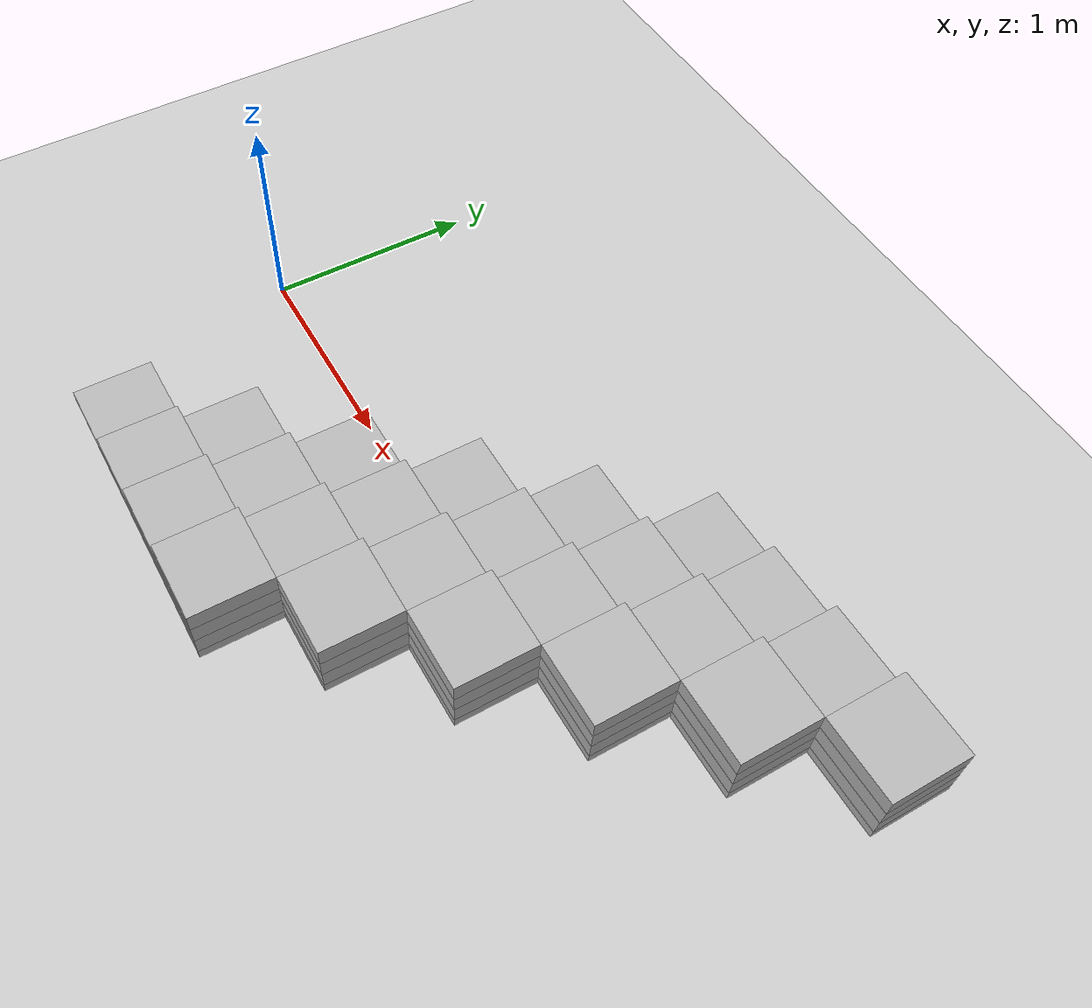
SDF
<sdf version="1.5">
 <world name="trials_task_2">
  <model name="ground_plane">
   <static>1</static>
   <link name="link">
    <collision name="collision">
     <geometry><plane><normal>0 0 1</normal><size>100 100</size></plane></geometry>
     <surface><friction><ode><mu>100</mu><mu2>50</mu2></ode></friction></surface>
    </collision>
    <visual name="visual">
     <cast_shadows>0</cast_shadows>
     <geometry><plane><normal>0 0 1</normal><size>100 100</size></plane></geometry>
     <material>
      <script><uri>file://media/materials/scripts/gazebo.material</uri><name>Gazebo/Grey</name></script>
     </material>
    </visual>
    <velocity_decay><linear>0</linear><angular>0</angular></velocity_decay>
   </link>
  </model>
  <model name="level_block_1">
   <pose>0.351 -0.949 0 0 -0 0</pose>
   <link name="block_0_0_0::link">
    <inertial>
     <pose>0 0 0.0714375 0 -0 0</pose>
     <mass>5</mass>
     <inertia>
      <ixx>0.0681466</ixx>
      <ixy>0</ixy>
      <iyy>0.0681466</iyy>
      <ixz>0</ixz>
      <iyz>0</iyz>
      <izz>0.124808</izz>
     </inertia>
    </inertial>
    <visual name="visual"><geometry><box><size>0.387354 0.387354 0.092075</size></box></geometry></visual>
    <collision name="block_collision">
     <geometry><box><size>0.387354 0.387354 0.092075</size></box></geometry>
     <surface>
      <contact><ode><max_vel>0.1</max_vel><min_depth>0.001</min_depth></ode></contact>
      <friction><ode><mu>1</mu><mu2>1</mu2></ode></friction>
     </surface>
    </collision>
    <velocity_decay><linear>0</linear><angular>0</angular></velocity_decay>
    <pose>0 0 0 0 -0 1.5708</pose>
   </link>
   <link name="block_0_1_1::link">
    <inertial>
     <pose>0 0 0.0714375 0 -0 0</pose>
     <mass>5</mass>
     <inertia>
      <ixx>0.0681466</ixx>
      <ixy>0</ixy>
      <iyy>0.0681466</iyy>
      <ixz>0</ixz>
      <iyz>0</iyz>
      <izz>0.124808</izz>
     </inertia>
    </inertial>
    <visual name="visual"><geometry><box><size>0.387354 0.387354 0.092075</size></box></geometry></visual>
    <collision name="block_collision">
     <geometry><box><size>0.387354 0.387354 0.092075</size></box></geometry>
     <surface>
      <contact><ode><max_vel>0.1</max_vel><min_depth>0.001</min_depth></ode></contact>
      <friction><ode><mu>1</mu><mu2>1</mu2></ode></friction>
     </surface>
    </collision>
    <velocity_decay><linear>0</linear><angular>0</angular></velocity_decay>
    <pose>0.387354 0 0.093 0 -0 1.5708</pose>
   </link>
   <link name="block_0_1_0::link">
    <inertial>
     <pose>0 0 0.0714375 0 -0 0</pose>
     <mass>5</mass>
     <inertia>
      <ixx>0.0681466</ixx>
      <ixy>0</ixy>
      <iyy>0.0681466</iyy>
      <ixz>0</ixz>
      <iyz>0</iyz>
      <izz>0.124808</izz>
     </inertia>
    </inertial>
    <visual name="visual"><geometry><box><size>0.387354 0.387354 0.092075</size></box></geometry></visual>
    <collision name="block_collision">
     <geometry><box><size>0.387354 0.387354 0.092075</size></box></geometry>
     <surface>
      <contact><ode><max_vel>0.1</max_vel><min_depth>0.001</min_depth></ode></contact>
      <friction><ode><mu>1</mu><mu2>1</mu2></ode></friction>
     </surface>
    </collision>
    <velocity_decay><linear>0</linear><angular>0</angular></velocity_decay>
    <pose>0.387354 0 0 0 -0 1.5708</pose>
   </link>
   <link name="block_0_2_2::link">
    <inertial>
     <pose>0 0 0.0714375 0 -0 0</pose>
     <mass>5</mass>
     <inertia>
      <ixx>0.0681466</ixx>
      <ixy>0</ixy>
      <iyy>0.0681466</iyy>
      <ixz>0</ixz>
      <iyz>0</iyz>
      <izz>0.124808</izz>
     </inertia>
    </inertial>
    <visual name="visual"><geometry><box><size>0.387354 0.387354 0.092075</size></box></geometry></visual>
    <collision name="block_collision">
     <geometry><box><size>0.387354 0.387354 0.092075</size></box></geometry>
     <surface>
      <contact><ode><max_vel>0.1</max_vel><min_depth>0.001</min_depth></ode></contact>
      <friction><ode><mu>1</mu><mu2>1</mu2></ode></friction>
     </surface>
    </collision>
    <velocity_decay><linear>0</linear><angular>0</angular></velocity_decay>
    <pose>0.774707 0 0.186 0 -0 1.5708</pose>
   </link>
   <link name="block_0_2_1::link">
    <inertial>
     <pose>0 0 0.0714375 0 -0 0</pose>
     <mass>5</mass>
     <inertia>
      <ixx>0.0681466</ixx>
      <ixy>0</ixy>
      <iyy>0.0681466</iyy>
      <ixz>0</ixz>
      <iyz>0</iyz>
      <izz>0.124808</izz>
     </inertia>
    </inertial>
    <visual name="visual"><geometry><box><size>0.387354 0.387354 0.092075</size></box></geometry></visual>
    <collision name="block_collision">
     <geometry><box><size>0.387354 0.387354 0.092075</size></box></geometry>
     <surface>
      <contact><ode><max_vel>0.1</max_vel><min_depth>0.001</min_depth></ode></contact>
      <friction><ode><mu>1</mu><mu2>1</mu2></ode></friction>
     </surface>
    </collision>
    <velocity_decay><linear>0</linear><angular>0</angular></velocity_decay>
    <pose>0.774707 0 0.093 0 -0 1.5708</pose>
   </link>
   <link name="block_0_2_0::link">
    <inertial>
     <pose>0 0 0.0714375 0 -0 0</pose>
     <mass>5</mass>
     <inertia>
      <ixx>0.0681466</ixx>
      <ixy>0</ixy>
      <iyy>0.0681466</iyy>
      <ixz>0</ixz>
      <iyz>0</iyz>
      <izz>0.124808</izz>
     </inertia>
    </inertial>
    <visual name="visual"><geometry><box><size>0.387354 0.387354 0.092075</size></box></geometry></visual>
    <collision name="block_collision">
     <geometry><box><size>0.387354 0.387354 0.092075</size></box></geometry>
     <surface>
      <contact><ode><max_vel>0.1</max_vel><min_depth>0.001</min_depth></ode></contact>
      <friction><ode><mu>1</mu><mu2>1</mu2></ode></friction>
     </surface>
    </collision>
    <velocity_decay><linear>0</linear><angular>0</angular></velocity_decay>
    <pose>0.774707 0 0 0 -0 1.5708</pose>
   </link>
   <link name="block_0_3_3::link">
    <inertial>
     <pose>0 0 0.0714375 0 -0 0</pose>
     <mass>5</mass>
     <inertia>
      <ixx>0.0681466</ixx>
      <ixy>0</ixy>
      <iyy>0.0681466</iyy>
      <ixz>0</ixz>
      <iyz>0</iyz>
      <izz>0.124808</izz>
     </inertia>
    </inertial>
    <visual name="visual"><geometry><box><size>0.387354 0.387354 0.092075</size></box></geometry></visual>
    <collision name="block_collision">
     <geometry><box><size>0.387354 0.387354 0.092075</size></box></geometry>
     <surface>
      <contact><ode><max_vel>0.1</max_vel><min_depth>0.001</min_depth></ode></contact>
      <friction><ode><mu>1</mu><mu2>1</mu2></ode></friction>
     </surface>
    </collision>
    <velocity_decay><linear>0</linear><angular>0</angular></velocity_decay>
    <pose>1.16206 0 0.279 0 -0 1.5708</pose>
   </link>
   <link name="block_0_3_2::link">
    <inertial>
     <pose>0 0 0.0714375 0 -0 0</pose>
     <mass>5</mass>
     <inertia>
      <ixx>0.0681466</ixx>
      <ixy>0</ixy>
      <iyy>0.0681466</iyy>
      <ixz>0</ixz>
      <iyz>0</iyz>
      <izz>0.124808</izz>
     </inertia>
    </inertial>
    <visual name="visual"><geometry><box><size>0.387354 0.387354 0.092075</size></box></geometry></visual>
    <collision name="block_collision">
     <geometry><box><size>0.387354 0.387354 0.092075</size></box></geometry>
     <surface>
      <contact><ode><max_vel>0.1</max_vel><min_depth>0.001</min_depth></ode></contact>
      <friction><ode><mu>1</mu><mu2>1</mu2></ode></friction>
     </surface>
    </collision>
    <velocity_decay><linear>0</linear><angular>0</angular></velocity_decay>
    <pose>1.16206 0 0.186 0 -0 1.5708</pose>
   </link>
   <link name="block_0_3_1::link">
    <inertial>
     <pose>0 0 0.0714375 0 -0 0</pose>
     <mass>5</mass>
     <inertia>
      <ixx>0.0681466</ixx>
      <ixy>0</ixy>
      <iyy>0.0681466</iyy>
      <ixz>0</ixz>
      <iyz>0</iyz>
      <izz>0.124808</izz>
     </inertia>
    </inertial>
    <visual name="visual"><geometry><box><size>0.387354 0.387354 0.092075</size></box></geometry></visual>
    <collision name="block_collision">
     <geometry><box><size>0.387354 0.387354 0.092075</size></box></geometry>
     <surface>
      <contact><ode><max_vel>0.1</max_vel><min_depth>0.001</min_depth></ode></contact>
      <friction><ode><mu>1</mu><mu2>1</mu2></ode></friction>
     </surface>
    </collision>
    <velocity_decay><linear>0</linear><angular>0</angular></velocity_decay>
    <pose>1.16206 0 0.093 0 -0 1.5708</pose>
   </link>
   <link name="block_0_3_0::link">
    <inertial>
     <pose>0 0 0.0714375 0 -0 0</pose>
     <mass>5</mass>
     <inertia>
      <ixx>0.0681466</ixx>
      <ixy>0</ixy>
      <iyy>0.0681466</iyy>
      <ixz>0</ixz>
      <iyz>0</iyz>
      <izz>0.124808</izz>
     </inertia>
    </inertial>
    <visual name="visual"><geometry><box><size>0.387354 0.387354 0.092075</size></box></geometry></visual>
    <collision name="block_collision">
     <geometry><box><size>0.387354 0.387354 0.092075</size></box></geometry>
     <surface>
      <contact><ode><max_vel>0.1</max_vel><min_depth>0.001</min_depth></ode></contact>
      <friction><ode><mu>1</mu><mu2>1</mu2></ode></friction>
     </surface>
    </collision>
    <velocity_decay><linear>0</linear><angular>0</angular></velocity_decay>
    <pose>1.16206 0 0 0 -0 1.5708</pose>
   </link>
   <link name="block_1_0_0::link">
    <inertial>
     <pose>0 0 0.0714375 0 -0 0</pose>
     <mass>5</mass>
     <inertia>
      <ixx>0.0681466</ixx>
      <ixy>0</ixy>
      <iyy>0.0681466</iyy>
      <ixz>0</ixz>
      <iyz>0</iyz>
      <izz>0.124808</izz>
     </inertia>
    </inertial>
    <visual name="visual"><geometry><box><size>0.387354 0.387354 0.092075</size></box></geometry></visual>
    <collision name="block_collision">
     <geometry><box><size>0.387354 0.387354 0.092075</size></box></geometry>
     <surface>
      <contact><ode><max_vel>0.1</max_vel><min_depth>0.001</min_depth></ode></contact>
      <friction><ode><mu>1</mu><mu2>1</mu2></ode></friction>
     </surface>
    </collision>
    <velocity_decay><linear>0</linear><angular>0</angular></velocity_decay>
    <pose>0.387354 0.387354 0 0 -0 1.5708</pose>
   </link>
   <link name="block_1_1_1::link">
    <inertial>
     <pose>0 0 0.0714375 0 -0 0</pose>
     <mass>5</mass>
     <inertia>
      <ixx>0.0681466</ixx>
      <ixy>0</ixy>
      <iyy>0.0681466</iyy>
      <ixz>0</ixz>
      <iyz>0</iyz>
      <izz>0.124808</izz>
     </inertia>
    </inertial>
    <visual name="visual"><geometry><box><size>0.387354 0.387354 0.092075</size></box></geometry></visual>
    <collision name="block_collision">
     <geometry><box><size>0.387354 0.387354 0.092075</size></box></geometry>
     <surface>
      <contact><ode><max_vel>0.1</max_vel><min_depth>0.001</min_depth></ode></contact>
      <friction><ode><mu>1</mu><mu2>1</mu2></ode></friction>
     </surface>
    </collision>
    <velocity_decay><linear>0</linear><angular>0</angular></velocity_decay>
    <pose>0.774707 0.387354 0.093 0 -0 1.5708</pose>
   </link>
   <link name="block_1_1_0::link">
    <inertial>
     <pose>0 0 0.0714375 0 -0 0</pose>
     <mass>5</mass>
     <inertia>
      <ixx>0.0681466</ixx>
      <ixy>0</ixy>
      <iyy>0.0681466</iyy>
      <ixz>0</ixz>
      <iyz>0</iyz>
      <izz>0.124808</izz>
     </inertia>
    </inertial>
    <visual name="visual"><geometry><box><size>0.387354 0.387354 0.092075</size></box></geometry></visual>
    <collision name="block_collision">
     <geometry><box><size>0.387354 0.387354 0.092075</size></box></geometry>
     <surface>
      <contact><ode><max_vel>0.1</max_vel><min_depth>0.001</min_depth></ode></contact>
      <friction><ode><mu>1</mu><mu2>1</mu2></ode></friction>
     </surface>
    </collision>
    <velocity_decay><linear>0</linear><angular>0</angular></velocity_decay>
    <pose>0.774707 0.387354 0 0 -0 1.5708</pose>
   </link>
   <link name="block_1_2_2::link">
    <inertial>
     <pose>0 0 0.0714375 0 -0 0</pose>
     <mass>5</mass>
     <inertia>
      <ixx>0.0681466</ixx>
      <ixy>0</ixy>
      <iyy>0.0681466</iyy>
      <ixz>0</ixz>
      <iyz>0</iyz>
      <izz>0.124808</izz>
     </inertia>
    </inertial>
    <visual name="visual"><geometry><box><size>0.387354 0.387354 0.092075</size></box></geometry></visual>
    <collision name="block_collision">
     <geometry><box><size>0.387354 0.387354 0.092075</size></box></geometry>
     <surface>
      <contact><ode><max_vel>0.1</max_vel><min_depth>0.001</min_depth></ode></contact>
      <friction><ode><mu>1</mu><mu2>1</mu2></ode></friction>
     </surface>
    </collision>
    <velocity_decay><linear>0</linear><angular>0</angular></velocity_decay>
    <pose>1.16206 0.387354 0.186 0 -0 1.5708</pose>
   </link>
   <link name="block_1_2_1::link">
    <inertial>
     <pose>0 0 0.0714375 0 -0 0</pose>
     <mass>5</mass>
     <inertia>
      <ixx>0.0681466</ixx>
      <ixy>0</ixy>
      <iyy>0.0681466</iyy>
      <ixz>0</ixz>
      <iyz>0</iyz>
      <izz>0.124808</izz>
     </inertia>
    </inertial>
    <visual name="visual"><geometry><box><size>0.387354 0.387354 0.092075</size></box></geometry></visual>
    <collision name="block_collision">
     <geometry><box><size>0.387354 0.387354 0.092075</size></box></geometry>
     <surface>
      <contact><ode><max_vel>0.1</max_vel><min_depth>0.001</min_depth></ode></contact>
      <friction><ode><mu>1</mu><mu2>1</mu2></ode></friction>
     </surface>
    </collision>
    <velocity_decay><linear>0</linear><angular>0</angular></velocity_decay>
    <pose>1.16206 0.387354 0.093 0 -0 1.5708</pose>
   </link>
   <link name="block_1_2_0::link">
    <inertial>
     <pose>0 0 0.0714375 0 -0 0</pose>
     <mass>5</mass>
     <inertia>
      <ixx>0.0681466</ixx>
      <ixy>0</ixy>
      <iyy>0.0681466</iyy>
      <ixz>0</ixz>
      <iyz>0</iyz>
      <izz>0.124808</izz>
     </inertia>
    </inertial>
    <visual name="visual"><geometry><box><size>0.387354 0.387354 0.092075</size></box></geometry></visual>
    <collision name="block_collision">
     <geometry><box><size>0.387354 0.387354 0.092075</size></box></geometry>
     <surface>
      <contact><ode><max_vel>0.1</max_vel><min_depth>0.001</min_depth></ode></contact>
      <friction><ode><mu>1</mu><mu2>1</mu2></ode></friction>
     </surface>
    </collision>
    <velocity_decay><linear>0</linear><angular>0</angular></velocity_decay>
    <pose>1.16206 0.387354 0 0 -0 1.5708</pose>
   </link>
   <link name="block_1_3_3::link">
    <inertial>
     <pose>0 0 0.0714375 0 -0 0</pose>
     <mass>5</mass>
     <inertia>
      <ixx>0.0681466</ixx>
      <ixy>0</ixy>
      <iyy>0.0681466</iyy>
      <ixz>0</ixz>
      <iyz>0</iyz>
      <izz>0.124808</izz>
     </inertia>
    </inertial>
    <visual name="visual"><geometry><box><size>0.387354 0.387354 0.092075</size></box></geometry></visual>
    <collision name="block_collision">
     <geometry><box><size>0.387354 0.387354 0.092075</size></box></geometry>
     <surface>
      <contact><ode><max_vel>0.1</max_vel><min_depth>0.001</min_depth></ode></contact>
      <friction><ode><mu>1</mu><mu2>1</mu2></ode></friction>
     </surface>
    </collision>
    <velocity_decay><linear>0</linear><angular>0</angular></velocity_decay>
    <pose>1.54941 0.387354 0.279 0 -0 1.5708</pose>
   </link>
   <link name="block_1_3_2::link">
    <inertial>
     <pose>0 0 0.0714375 0 -0 0</pose>
     <mass>5</mass>
     <inertia>
      <ixx>0.0681466</ixx>
      <ixy>0</ixy>
      <iyy>0.0681466</iyy>
      <ixz>0</ixz>
      <iyz>0</iyz>
      <izz>0.124808</izz>
     </inertia>
    </inertial>
    <visual name="visual"><geometry><box><size>0.387354 0.387354 0.092075</size></box></geometry></visual>
    <collision name="block_collision">
     <geometry><box><size>0.387354 0.387354 0.092075</size></box></geometry>
     <surface>
      <contact><ode><max_vel>0.1</max_vel><min_depth>0.001</min_depth></ode></contact>
      <friction><ode><mu>1</mu><mu2>1</mu2></ode></friction>
     </surface>
    </collision>
    <velocity_decay><linear>0</linear><angular>0</angular></velocity_decay>
    <pose>1.54941 0.387354 0.186 0 -0 1.5708</pose>
   </link>
   <link name="block_1_3_1::link">
    <inertial>
     <pose>0 0 0.0714375 0 -0 0</pose>
     <mass>5</mass>
     <inertia>
      <ixx>0.0681466</ixx>
      <ixy>0</ixy>
      <iyy>0.0681466</iyy>
      <ixz>0</ixz>
      <iyz>0</iyz>
      <izz>0.124808</izz>
     </inertia>
    </inertial>
    <visual name="visual"><geometry><box><size>0.387354 0.387354 0.092075</size></box></geometry></visual>
    <collision name="block_collision">
     <geometry><box><size>0.387354 0.387354 0.092075</size></box></geometry>
     <surface>
      <contact><ode><max_vel>0.1</max_vel><min_depth>0.001</min_depth></ode></contact>
      <friction><ode><mu>1</mu><mu2>1</mu2></ode></friction>
     </surface>
    </collision>
    <velocity_decay><linear>0</linear><angular>0</angular></velocity_decay>
    <pose>1.54941 0.387354 0.093 0 -0 1.5708</pose>
   </link>
   <link name="block_1_3_0::link">
    <inertial>
     <pose>0 0 0.0714375 0 -0 0</pose>
     <mass>5</mass>
     <inertia>
      <ixx>0.0681466</ixx>
      <ixy>0</ixy>
      <iyy>0.0681466</iyy>
      <ixz>0</ixz>
      <iyz>0</iyz>
      <izz>0.124808</izz>
     </inertia>
    </inertial>
    <visual name="visual"><geometry><box><size>0.387354 0.387354 0.092075</size></box></geometry></visual>
    <collision name="block_collision">
     <geometry><box><size>0.387354 0.387354 0.092075</size></box></geometry>
     <surface>
      <contact><ode><max_vel>0.1</max_vel><min_depth>0.001</min_depth></ode></contact>
      <friction><ode><mu>1</mu><mu2>1</mu2></ode></friction>
     </surface>
    </collision>
    <velocity_decay><linear>0</linear><angular>0</angular></velocity_decay>
    <pose>1.54941 0.387354 0 0 -0 1.5708</pose>
   </link>
   <link name="block_2_0_0::link">
    <inertial>
     <pose>0 0 0.0714375 0 -0 0</pose>
     <mass>5</mass>
     <inertia>
      <ixx>0.0681466</ixx>
      <ixy>0</ixy>
      <iyy>0.0681466</iyy>
      <ixz>0</ixz>
      <iyz>0</iyz>
      <izz>0.124808</izz>
     </inertia>
    </inertial>
    <visual name="visual"><geometry><box><size>0.387354 0.387354 0.092075</size></box></geometry></visual>
    <collision name="block_collision">
     <geometry><box><size>0.387354 0.387354 0.092075</size></box></geometry>
     <surface>
      <contact><ode><max_vel>0.1</max_vel><min_depth>0.001</min_depth></ode></contact>
      <friction><ode><mu>1</mu><mu2>1</mu2></ode></friction>
     </surface>
    </collision>
    <velocity_decay><linear>0</linear><angular>0</angular></velocity_decay>
    <pose>0.774707 0.774707 0 0 -0 1.5708</pose>
   </link>
   <link name="block_2_1_1::link">
    <inertial>
     <pose>0 0 0.0714375 0 -0 0</pose>
     <mass>5</mass>
     <inertia>
      <ixx>0.0681466</ixx>
      <ixy>0</ixy>
      <iyy>0.0681466</iyy>
      <ixz>0</ixz>
      <iyz>0</iyz>
      <izz>0.124808</izz>
     </inertia>
    </inertial>
    <visual name="visual"><geometry><box><size>0.387354 0.387354 0.092075</size></box></geometry></visual>
    <collision name="block_collision">
     <geometry><box><size>0.387354 0.387354 0.092075</size></box></geometry>
     <surface>
      <contact><ode><max_vel>0.1</max_vel><min_depth>0.001</min_depth></ode></contact>
      <friction><ode><mu>1</mu><mu2>1</mu2></ode></friction>
     </surface>
    </collision>
    <velocity_decay><linear>0</linear><angular>0</angular></velocity_decay>
    <pose>1.16206 0.774707 0.093 0 -0 1.5708</pose>
   </link>
   <link name="block_2_1_0::link">
    <inertial>
     <pose>0 0 0.0714375 0 -0 0</pose>
     <mass>5</mass>
     <inertia>
      <ixx>0.0681466</ixx>
      <ixy>0</ixy>
      <iyy>0.0681466</iyy>
      <ixz>0</ixz>
      <iyz>0</iyz>
      <izz>0.124808</izz>
     </inertia>
    </inertial>
    <visual name="visual"><geometry><box><size>0.387354 0.387354 0.092075</size></box></geometry></visual>
    <collision name="block_collision">
     <geometry><box><size>0.387354 0.387354 0.092075</size></box></geometry>
     <surface>
      <contact><ode><max_vel>0.1</max_vel><min_depth>0.001</min_depth></ode></contact>
      <friction><ode><mu>1</mu><mu2>1</mu2></ode></friction>
     </surface>
    </collision>
    <velocity_decay><linear>0</linear><angular>0</angular></velocity_decay>
    <pose>1.16206 0.774707 0 0 -0 1.5708</pose>
   </link>
   <link name="block_2_2_2::link">
    <inertial>
     <pose>0 0 0.0714375 0 -0 0</pose>
     <mass>5</mass>
     <inertia>
      <ixx>0.0681466</ixx>
      <ixy>0</ixy>
      <iyy>0.0681466</iyy>
      <ixz>0</ixz>
      <iyz>0</iyz>
      <izz>0.124808</izz>
     </inertia>
    </inertial>
    <visual name="visual"><geometry><box><size>0.387354 0.387354 0.092075</size></box></geometry></visual>
    <collision name="block_collision">
     <geometry><box><size>0.387354 0.387354 0.092075</size></box></geometry>
     <surface>
      <contact><ode><max_vel>0.1</max_vel><min_depth>0.001</min_depth></ode></contact>
      <friction><ode><mu>1</mu><mu2>1</mu2></ode></friction>
     </surface>
    </collision>
    <velocity_decay><linear>0</linear><angular>0</angular></velocity_decay>
    <pose>1.54941 0.774707 0.186 0 -0 1.5708</pose>
   </link>
   <link name="block_2_2_1::link">
    <inertial>
     <pose>0 0 0.0714375 0 -0 0</pose>
     <mass>5</mass>
     <inertia>
      <ixx>0.0681466</ixx>
      <ixy>0</ixy>
      <iyy>0.0681466</iyy>
      <ixz>0</ixz>
      <iyz>0</iyz>
      <izz>0.124808</izz>
     </inertia>
    </inertial>
    <visual name="visual"><geometry><box><size>0.387354 0.387354 0.092075</size></box></geometry></visual>
    <collision name="block_collision">
     <geometry><box><size>0.387354 0.387354 0.092075</size></box></geometry>
     <surface>
      <contact><ode><max_vel>0.1</max_vel><min_depth>0.001</min_depth></ode></contact>
      <friction><ode><mu>1</mu><mu2>1</mu2></ode></friction>
     </surface>
    </collision>
    <velocity_decay><linear>0</linear><angular>0</angular></velocity_decay>
    <pose>1.54941 0.774707 0.093 0 -0 1.5708</pose>
   </link>
   <link name="block_2_2_0::link">
    <inertial>
     <pose>0 0 0.0714375 0 -0 0</pose>
     <mass>5</mass>
     <inertia>
      <ixx>0.0681466</ixx>
      <ixy>0</ixy>
      <iyy>0.0681466</iyy>
      <ixz>0</ixz>
      <iyz>0</iyz>
      <izz>0.124808</izz>
     </inertia>
    </inertial>
    <visual name="visual"><geometry><box><size>0.387354 0.387354 0.092075</size></box></geometry></visual>
    <collision name="block_collision">
     <geometry><box><size>0.387354 0.387354 0.092075</size></box></geometry>
     <surface>
      <contact><ode><max_vel>0.1</max_vel><min_depth>0.001</min_depth></ode></contact>
      <friction><ode><mu>1</mu><mu2>1</mu2></ode></friction>
     </surface>
    </collision>
    <velocity_decay><linear>0</linear><angular>0</angular></velocity_decay>
    <pose>1.54941 0.774707 0 0 -0 1.5708</pose>
   </link>
   <link name="block_2_3_3::link">
    <inertial>
     <pose>0 0 0.0714375 0 -0 0</pose>
     <mass>5</mass>
     <inertia>
      <ixx>0.0681466</ixx>
      <ixy>0</ixy>
      <iyy>0.0681466</iyy>
      <ixz>0</ixz>
      <iyz>0</iyz>
      <izz>0.124808</izz>
     </inertia>
    </inertial>
    <visual name="visual"><geometry><box><size>0.387354 0.387354 0.092075</size></box></geometry></visual>
    <collision name="block_collision">
     <geometry><box><size>0.387354 0.387354 0.092075</size></box></geometry>
     <surface>
      <contact><ode><max_vel>0.1</max_vel><min_depth>0.001</min_depth></ode></contact>
      <friction><ode><mu>1</mu><mu2>1</mu2></ode></friction>
     </surface>
    </collision>
    <velocity_decay><linear>0</linear><angular>0</angular></velocity_decay>
    <pose>1.93677 0.774707 0.279 0 -0 1.5708</pose>
   </link>
   <link name="block_2_3_2::link">
    <inertial>
     <pose>0 0 0.0714375 0 -0 0</pose>
     <mass>5</mass>
     <inertia>
      <ixx>0.0681466</ixx>
      <ixy>0</ixy>
      <iyy>0.0681466</iyy>
      <ixz>0</ixz>
      <iyz>0</iyz>
      <izz>0.124808</izz>
     </inertia>
    </inertial>
    <visual name="visual"><geometry><box><size>0.387354 0.387354 0.092075</size></box></geometry></visual>
    <collision name="block_collision">
     <geometry><box><size>0.387354 0.387354 0.092075</size></box></geometry>
     <surface>
      <contact><ode><max_vel>0.1</max_vel><min_depth>0.001</min_depth></ode></contact>
      <friction><ode><mu>1</mu><mu2>1</mu2></ode></friction>
     </surface>
    </collision>
    <velocity_decay><linear>0</linear><angular>0</angular></velocity_decay>
    <pose>1.93677 0.774707 0.186 0 -0 1.5708</pose>
   </link>
   <link name="block_2_3_1::link">
    <inertial>
     <pose>0 0 0.0714375 0 -0 0</pose>
     <mass>5</mass>
     <inertia>
      <ixx>0.0681466</ixx>
      <ixy>0</ixy>
      <iyy>0.0681466</iyy>
      <ixz>0</ixz>
      <iyz>0</iyz>
      <izz>0.124808</izz>
     </inertia>
    </inertial>
    <visual name="visual"><geometry><box><size>0.387354 0.387354 0.092075</size></box></geometry></visual>
    <collision name="block_collision">
     <geometry><box><size>0.387354 0.387354 0.092075</size></box></geometry>
     <surface>
      <contact><ode><max_vel>0.1</max_vel><min_depth>0.001</min_depth></ode></contact>
      <friction><ode><mu>1</mu><mu2>1</mu2></ode></friction>
     </surface>
    </collision>
    <velocity_decay><linear>0</linear><angular>0</angular></velocity_decay>
    <pose>1.93677 0.774707 0.093 0 -0 1.5708</pose>
   </link>
   <link name="block_2_3_0::link">
    <inertial>
     <pose>0 0 0.0714375 0 -0 0</pose>
     <mass>5</mass>
     <inertia>
      <ixx>0.0681466</ixx>
      <ixy>0</ixy>
      <iyy>0.0681466</iyy>
      <ixz>0</ixz>
      <iyz>0</iyz>
      <izz>0.124808</izz>
     </inertia>
    </inertial>
    <visual name="visual"><geometry><box><size>0.387354 0.387354 0.092075</size></box></geometry></visual>
    <collision name="block_collision">
     <geometry><box><size>0.387354 0.387354 0.092075</size></box></geometry>
     <surface>
      <contact><ode><max_vel>0.1</max_vel><min_depth>0.001</min_depth></ode></contact>
      <friction><ode><mu>1</mu><mu2>1</mu2></ode></friction>
     </surface>
    </collision>
    <velocity_decay><linear>0</linear><angular>0</angular></velocity_decay>
    <pose>1.93677 0.774707 0 0 -0 1.5708</pose>
   </link>
   <link name="block_3_0_0::link">
    <inertial>
     <pose>0 0 0.0714375 0 -0 0</pose>
     <mass>5</mass>
     <inertia>
      <ixx>0.0681466</ixx>
      <ixy>0</ixy>
      <iyy>0.0681466</iyy>
      <ixz>0</ixz>
      <iyz>0</iyz>
      <izz>0.124808</izz>
     </inertia>
    </inertial>
    <visual name="visual"><geometry><box><size>0.387354 0.387354 0.092075</size></box></geometry></visual>
    <collision name="block_collision">
     <geometry><box><size>0.387354 0.387354 0.092075</size></box></geometry>
     <surface>
      <contact><ode><max_vel>0.1</max_vel><min_depth>0.001</min_depth></ode></contact>
      <friction><ode><mu>1</mu><mu2>1</mu2></ode></friction>
     </surface>
    </collision>
    <velocity_decay><linear>0</linear><angular>0</angular></velocity_decay>
    <pose>1.16206 1.16206 0 0 -0 1.5708</pose>
   </link>
   <link name="block_3_1_1::link">
    <inertial>
     <pose>0 0 0.0714375 0 -0 0</pose>
     <mass>5</mass>
     <inertia>
      <ixx>0.0681466</ixx>
      <ixy>0</ixy>
      <iyy>0.0681466</iyy>
      <ixz>0</ixz>
      <iyz>0</iyz>
      <izz>0.124808</izz>
     </inertia>
    </inertial>
    <visual name="visual"><geometry><box><size>0.387354 0.387354 0.092075</size></box></geometry></visual>
    <collision name="block_collision">
     <geometry><box><size>0.387354 0.387354 0.092075</size></box></geometry>
     <surface>
      <contact><ode><max_vel>0.1</max_vel><min_depth>0.001</min_depth></ode></contact>
      <friction><ode><mu>1</mu><mu2>1</mu2></ode></friction>
     </surface>
    </collision>
    <velocity_decay><linear>0</linear><angular>0</angular></velocity_decay>
    <pose>1.54941 1.16206 0.093 0 -0 1.5708</pose>
   </link>
   <link name="block_3_1_0::link">
    <inertial>
     <pose>0 0 0.0714375 0 -0 0</pose>
     <mass>5</mass>
     <inertia>
      <ixx>0.0681466</ixx>
      <ixy>0</ixy>
      <iyy>0.0681466</iyy>
      <ixz>0</ixz>
      <iyz>0</iyz>
      <izz>0.124808</izz>
     </inertia>
    </inertial>
    <visual name="visual"><geometry><box><size>0.387354 0.387354 0.092075</size></box></geometry></visual>
    <collision name="block_collision">
     <geometry><box><size>0.387354 0.387354 0.092075</size></box></geometry>
     <surface>
      <contact><ode><max_vel>0.1</max_vel><min_depth>0.001</min_depth></ode></contact>
      <friction><ode><mu>1</mu><mu2>1</mu2></ode></friction>
     </surface>
    </collision>
    <velocity_decay><linear>0</linear><angular>0</angular></velocity_decay>
    <pose>1.54941 1.16206 0 0 -0 1.5708</pose>
   </link>
   <link name="block_3_2_2::link">
    <inertial>
     <pose>0 0 0.0714375 0 -0 0</pose>
     <mass>5</mass>
     <inertia>
      <ixx>0.0681466</ixx>
      <ixy>0</ixy>
      <iyy>0.0681466</iyy>
      <ixz>0</ixz>
      <iyz>0</iyz>
      <izz>0.124808</izz>
     </inertia>
    </inertial>
    <visual name="visual"><geometry><box><size>0.387354 0.387354 0.092075</size></box></geometry></visual>
    <collision name="block_collision">
     <geometry><box><size>0.387354 0.387354 0.092075</size></box></geometry>
     <surface>
      <contact><ode><max_vel>0.1</max_vel><min_depth>0.001</min_depth></ode></contact>
      <friction><ode><mu>1</mu><mu2>1</mu2></ode></friction>
     </surface>
    </collision>
    <velocity_decay><linear>0</linear><angular>0</angular></velocity_decay>
    <pose>1.93677 1.16206 0.186 0 -0 1.5708</pose>
   </link>
   <link name="block_3_2_1::link">
    <inertial>
     <pose>0 0 0.0714375 0 -0 0</pose>
     <mass>5</mass>
     <inertia>
      <ixx>0.0681466</ixx>
      <ixy>0</ixy>
      <iyy>0.0681466</iyy>
      <ixz>0</ixz>
      <iyz>0</iyz>
      <izz>0.124808</izz>
     </inertia>
    </inertial>
    <visual name="visual"><geometry><box><size>0.387354 0.387354 0.092075</size></box></geometry></visual>
    <collision name="block_collision">
     <geometry><box><size>0.387354 0.387354 0.092075</size></box></geometry>
     <surface>
      <contact><ode><max_vel>0.1</max_vel><min_depth>0.001</min_depth></ode></contact>
      <friction><ode><mu>1</mu><mu2>1</mu2></ode></friction>
     </surface>
    </collision>
    <velocity_decay><linear>0</linear><angular>0</angular></velocity_decay>
    <pose>1.93677 1.16206 0.093 0 -0 1.5708</pose>
   </link>
   <link name="block_3_2_0::link">
    <inertial>
     <pose>0 0 0.0714375 0 -0 0</pose>
     <mass>5</mass>
     <inertia>
      <ixx>0.0681466</ixx>
      <ixy>0</ixy>
      <iyy>0.0681466</iyy>
      <ixz>0</ixz>
      <iyz>0</iyz>
      <izz>0.124808</izz>
     </inertia>
    </inertial>
    <visual name="visual"><geometry><box><size>0.387354 0.387354 0.092075</size></box></geometry></visual>
    <collision name="block_collision">
     <geometry><box><size>0.387354 0.387354 0.092075</size></box></geometry>
     <surface>
      <contact><ode><max_vel>0.1</max_vel><min_depth>0.001</min_depth></ode></contact>
      <friction><ode><mu>1</mu><mu2>1</mu2></ode></friction>
     </surface>
    </collision>
    <velocity_decay><linear>0</linear><angular>0</angular></velocity_decay>
    <pose>1.93677 1.16206 0 0 -0 1.5708</pose>
   </link>
   <link name="block_3_3_3::link">
    <inertial>
     <pose>0 0 0.0714375 0 -0 0</pose>
     <mass>5</mass>
     <inertia>
      <ixx>0.0681466</ixx>
      <ixy>0</ixy>
      <iyy>0.0681466</iyy>
      <ixz>0</ixz>
      <iyz>0</iyz>
      <izz>0.124808</izz>
     </inertia>
    </inertial>
    <visual name="visual"><geometry><box><size>0.387354 0.387354 0.092075</size></box></geometry></visual>
    <collision name="block_collision">
     <geometry><box><size>0.387354 0.387354 0.092075</size></box></geometry>
     <surface>
      <contact><ode><max_vel>0.1</max_vel><min_depth>0.001</min_depth></ode></contact>
      <friction><ode><mu>1</mu><mu2>1</mu2></ode></friction>
     </surface>
    </collision>
    <velocity_decay><linear>0</linear><angular>0</angular></velocity_decay>
    <pose>2.32412 1.16206 0.279 0 -0 1.5708</pose>
   </link>
   <link name="block_3_3_2::link">
    <inertial>
     <pose>0 0 0.0714375 0 -0 0</pose>
     <mass>5</mass>
     <inertia>
      <ixx>0.0681466</ixx>
      <ixy>0</ixy>
      <iyy>0.0681466</iyy>
      <ixz>0</ixz>
      <iyz>0</iyz>
      <izz>0.124808</izz>
     </inertia>
    </inertial>
    <visual name="visual"><geometry><box><size>0.387354 0.387354 0.092075</size></box></geometry></visual>
    <collision name="block_collision">
     <geometry><box><size>0.387354 0.387354 0.092075</size></box></geometry>
     <surface>
      <contact><ode><max_vel>0.1</max_vel><min_depth>0.001</min_depth></ode></contact>
      <friction><ode><mu>1</mu><mu2>1</mu2></ode></friction>
     </surface>
    </collision>
    <velocity_decay><linear>0</linear><angular>0</angular></velocity_decay>
    <pose>2.32412 1.16206 0.186 0 -0 1.5708</pose>
   </link>
   <link name="block_3_3_1::link">
    <inertial>
     <pose>0 0 0.0714375 0 -0 0</pose>
     <mass>5</mass>
     <inertia>
      <ixx>0.0681466</ixx>
      <ixy>0</ixy>
      <iyy>0.0681466</iyy>
      <ixz>0</ixz>
      <iyz>0</iyz>
      <izz>0.124808</izz>
     </inertia>
    </inertial>
    <visual name="visual"><geometry><box><size>0.387354 0.387354 0.092075</size></box></geometry></visual>
    <collision name="block_collision">
     <geometry><box><size>0.387354 0.387354 0.092075</size></box></geometry>
     <surface>
      <contact><ode><max_vel>0.1</max_vel><min_depth>0.001</min_depth></ode></contact>
      <friction><ode><mu>1</mu><mu2>1</mu2></ode></friction>
     </surface>
    </collision>
    <velocity_decay><linear>0</linear><angular>0</angular></velocity_decay>
    <pose>2.32412 1.16206 0.093 0 -0 1.5708</pose>
   </link>
   <link name="block_3_3_0::link">
    <inertial>
     <pose>0 0 0.0714375 0 -0 0</pose>
     <mass>5</mass>
     <inertia>
      <ixx>0.0681466</ixx>
      <ixy>0</ixy>
      <iyy>0.0681466</iyy>
      <ixz>0</ixz>
      <iyz>0</iyz>
      <izz>0.124808</izz>
     </inertia>
    </inertial>
    <visual name="visual"><geometry><box><size>0.387354 0.387354 0.092075</size></box></geometry></visual>
    <collision name="block_collision">
     <geometry><box><size>0.387354 0.387354 0.092075</size></box></geometry>
     <surface>
      <contact><ode><max_vel>0.1</max_vel><min_depth>0.001</min_depth></ode></contact>
      <friction><ode><mu>1</mu><mu2>1</mu2></ode></friction>
     </surface>
    </collision>
    <velocity_decay><linear>0</linear><angular>0</angular></velocity_decay>
    <pose>2.32412 1.16206 0 0 -0 1.5708</pose>
   </link>
   <link name="block_4_0_0::link">
    <inertial>
     <pose>0 0 0.0714375 0 -0 0</pose>
     <mass>5</mass>
     <inertia>
      <ixx>0.0681466</ixx>
      <ixy>0</ixy>
      <iyy>0.0681466</iyy>
      <ixz>0</ixz>
      <iyz>0</iyz>
      <izz>0.124808</izz>
     </inertia>
    </inertial>
    <visual name="visual"><geometry><box><size>0.387354 0.387354 0.092075</size></box></geometry></visual>
    <collision name="block_collision">
     <geometry><box><size>0.387354 0.387354 0.092075</size></box></geometry>
     <surface>
      <contact><ode><max_vel>0.1</max_vel><min_depth>0.001</min_depth></ode></contact>
      <friction><ode><mu>1</mu><mu2>1</mu2></ode></friction>
     </surface>
    </collision>
    <velocity_decay><linear>0</linear><angular>0</angular></velocity_decay>
    <pose>1.54941 1.54941 0 0 -0 1.5708</pose>
   </link>
   <link name="block_4_1_1::link">
    <inertial>
     <pose>0 0 0.0714375 0 -0 0</pose>
     <mass>5</mass>
     <inertia>
      <ixx>0.0681466</ixx>
      <ixy>0</ixy>
      <iyy>0.0681466</iyy>
      <ixz>0</ixz>
      <iyz>0</iyz>
      <izz>0.124808</izz>
     </inertia>
    </inertial>
    <visual name="visual"><geometry><box><size>0.387354 0.387354 0.092075</size></box></geometry></visual>
    <collision name="block_collision">
     <geometry><box><size>0.387354 0.387354 0.092075</size></box></geometry>
     <surface>
      <contact><ode><max_vel>0.1</max_vel><min_depth>0.001</min_depth></ode></contact>
      <friction><ode><mu>1</mu><mu2>1</mu2></ode></friction>
     </surface>
    </collision>
    <velocity_decay><linear>0</linear><angular>0</angular></velocity_decay>
    <pose>1.93677 1.54941 0.093 0 -0 1.5708</pose>
   </link>
   <link name="block_4_1_0::link">
    <inertial>
     <pose>0 0 0.0714375 0 -0 0</pose>
     <mass>5</mass>
     <inertia>
      <ixx>0.0681466</ixx>
      <ixy>0</ixy>
      <iyy>0.0681466</iyy>
      <ixz>0</ixz>
      <iyz>0</iyz>
      <izz>0.124808</izz>
     </inertia>
    </inertial>
    <visual name="visual"><geometry><box><size>0.387354 0.387354 0.092075</size></box></geometry></visual>
    <collision name="block_collision">
     <geometry><box><size>0.387354 0.387354 0.092075</size></box></geometry>
     <surface>
      <contact><ode><max_vel>0.1</max_vel><min_depth>0.001</min_depth></ode></contact>
      <friction><ode><mu>1</mu><mu2>1</mu2></ode></friction>
     </surface>
    </collision>
    <velocity_decay><linear>0</linear><angular>0</angular></velocity_decay>
    <pose>1.93677 1.54941 0 0 -0 1.5708</pose>
   </link>
   <link name="block_4_2_2::link">
    <inertial>
     <pose>0 0 0.0714375 0 -0 0</pose>
     <mass>5</mass>
     <inertia>
      <ixx>0.0681466</ixx>
      <ixy>0</ixy>
      <iyy>0.0681466</iyy>
      <ixz>0</ixz>
      <iyz>0</iyz>
      <izz>0.124808</izz>
     </inertia>
    </inertial>
    <visual name="visual"><geometry><box><size>0.387354 0.387354 0.092075</size></box></geometry></visual>
    <collision name="block_collision">
     <geometry><box><size>0.387354 0.387354 0.092075</size></box></geometry>
     <surface>
      <contact><ode><max_vel>0.1</max_vel><min_depth>0.001</min_depth></ode></contact>
      <friction><ode><mu>1</mu><mu2>1</mu2></ode></friction>
     </surface>
    </collision>
    <velocity_decay><linear>0</linear><angular>0</angular></velocity_decay>
    <pose>2.32412 1.54941 0.186 0 -0 1.5708</pose>
   </link>
   <link name="block_4_2_1::link">
    <inertial>
     <pose>0 0 0.0714375 0 -0 0</pose>
     <mass>5</mass>
     <inertia>
      <ixx>0.0681466</ixx>
      <ixy>0</ixy>
      <iyy>0.0681466</iyy>
      <ixz>0</ixz>
      <iyz>0</iyz>
      <izz>0.124808</izz>
     </inertia>
    </inertial>
    <visual name="visual"><geometry><box><size>0.387354 0.387354 0.092075</size></box></geometry></visual>
    <collision name="block_collision">
     <geometry><box><size>0.387354 0.387354 0.092075</size></box></geometry>
     <surface>
      <contact><ode><max_vel>0.1</max_vel><min_depth>0.001</min_depth></ode></contact>
      <friction><ode><mu>1</mu><mu2>1</mu2></ode></friction>
     </surface>
    </collision>
    <velocity_decay><linear>0</linear><angular>0</angular></velocity_decay>
    <pose>2.32412 1.54941 0.093 0 -0 1.5708</pose>
   </link>
   <link name="block_4_2_0::link">
    <inertial>
     <pose>0 0 0.0714375 0 -0 0</pose>
     <mass>5</mass>
     <inertia>
      <ixx>0.0681466</ixx>
      <ixy>0</ixy>
      <iyy>0.0681466</iyy>
      <ixz>0</ixz>
      <iyz>0</iyz>
      <izz>0.124808</izz>
     </inertia>
    </inertial>
    <visual name="visual"><geometry><box><size>0.387354 0.387354 0.092075</size></box></geometry></visual>
    <collision name="block_collision">
     <geometry><box><size>0.387354 0.387354 0.092075</size></box></geometry>
     <surface>
      <contact><ode><max_vel>0.1</max_vel><min_depth>0.001</min_depth></ode></contact>
      <friction><ode><mu>1</mu><mu2>1</mu2></ode></friction>
     </surface>
    </collision>
    <velocity_decay><linear>0</linear><angular>0</angular></velocity_decay>
    <pose>2.32412 1.54941 0 0 -0 1.5708</pose>
   </link>
   <link name="block_4_3_3::link">
    <inertial>
     <pose>0 0 0.0714375 0 -0 0</pose>
     <mass>5</mass>
     <inertia>
      <ixx>0.0681466</ixx>
      <ixy>0</ixy>
      <iyy>0.0681466</iyy>
      <ixz>0</ixz>
      <iyz>0</iyz>
      <izz>0.124808</izz>
     </inertia>
    </inertial>
    <visual name="visual"><geometry><box><size>0.387354 0.387354 0.092075</size></box></geometry></visual>
    <collision name="block_collision">
     <geometry><box><size>0.387354 0.387354 0.092075</size></box></geometry>
     <surface>
      <contact><ode><max_vel>0.1</max_vel><min_depth>0.001</min_depth></ode></contact>
      <friction><ode><mu>1</mu><mu2>1</mu2></ode></friction>
     </surface>
    </collision>
    <velocity_decay><linear>0</linear><angular>0</angular></velocity_decay>
    <pose>2.71147 1.54941 0.279 0 -0 1.5708</pose>
   </link>
   <link name="block_4_3_2::link">
    <inertial>
     <pose>0 0 0.0714375 0 -0 0</pose>
     <mass>5</mass>
     <inertia>
      <ixx>0.0681466</ixx>
      <ixy>0</ixy>
      <iyy>0.0681466</iyy>
      <ixz>0</ixz>
      <iyz>0</iyz>
      <izz>0.124808</izz>
     </inertia>
    </inertial>
    <visual name="visual"><geometry><box><size>0.387354 0.387354 0.092075</size></box></geometry></visual>
    <collision name="block_collision">
     <geometry><box><size>0.387354 0.387354 0.092075</size></box></geometry>
     <surface>
      <contact><ode><max_vel>0.1</max_vel><min_depth>0.001</min_depth></ode></contact>
      <friction><ode><mu>1</mu><mu2>1</mu2></ode></friction>
     </surface>
    </collision>
    <velocity_decay><linear>0</linear><angular>0</angular></velocity_decay>
    <pose>2.71147 1.54941 0.186 0 -0 1.5708</pose>
   </link>
   <link name="block_4_3_1::link">
    <inertial>
     <pose>0 0 0.0714375 0 -0 0</pose>
     <mass>5</mass>
     <inertia>
      <ixx>0.0681466</ixx>
      <ixy>0</ixy>
      <iyy>0.0681466</iyy>
      <ixz>0</ixz>
      <iyz>0</iyz>
      <izz>0.124808</izz>
     </inertia>
    </inertial>
    <visual name="visual"><geometry><box><size>0.387354 0.387354 0.092075</size></box></geometry></visual>
    <collision name="block_collision">
     <geometry><box><size>0.387354 0.387354 0.092075</size></box></geometry>
     <surface>
      <contact><ode><max_vel>0.1</max_vel><min_depth>0.001</min_depth></ode></contact>
      <friction><ode><mu>1</mu><mu2>1</mu2></ode></friction>
     </surface>
    </collision>
    <velocity_decay><linear>0</linear><angular>0</angular></velocity_decay>
    <pose>2.71147 1.54941 0.093 0 -0 1.5708</pose>
   </link>
   <link name="block_4_3_0::link">
    <inertial>
     <pose>0 0 0.0714375 0 -0 0</pose>
     <mass>5</mass>
     <inertia>
      <ixx>0.0681466</ixx>
      <ixy>0</ixy>
      <iyy>0.0681466</iyy>
      <ixz>0</ixz>
      <iyz>0</iyz>
      <izz>0.124808</izz>
     </inertia>
    </inertial>
    <visual name="visual"><geometry><box><size>0.387354 0.387354 0.092075</size></box></geometry></visual>
    <collision name="block_collision">
     <geometry><box><size>0.387354 0.387354 0.092075</size></box></geometry>
     <surface>
      <contact><ode><max_vel>0.1</max_vel><min_depth>0.001</min_depth></ode></contact>
      <friction><ode><mu>1</mu><mu2>1</mu2></ode></friction>
     </surface>
    </collision>
    <velocity_decay><linear>0</linear><angular>0</angular></velocity_decay>
    <pose>2.71147 1.54941 0 0 -0 1.5708</pose>
   </link>
   <link name="block_5_0_0::link">
    <inertial>
     <pose>0 0 0.0714375 0 -0 0</pose>
     <mass>5</mass>
     <inertia>
      <ixx>0.0681466</ixx>
      <ixy>0</ixy>
      <iyy>0.0681466</iyy>
      <ixz>0</ixz>
      <iyz>0</iyz>
      <izz>0.124808</izz>
     </inertia>
    </inertial>
    <visual name="visual"><geometry><box><size>0.387354 0.387354 0.092075</size></box></geometry></visual>
    <collision name="block_collision">
     <geometry><box><size>0.387354 0.387354 0.092075</size></box></geometry>
     <surface>
      <contact><ode><max_vel>0.1</max_vel><min_depth>0.001</min_depth></ode></contact>
      <friction><ode><mu>1</mu><mu2>1</mu2></ode></friction>
     </surface>
    </collision>
    <velocity_decay><linear>0</linear><angular>0</angular></velocity_decay>
    <pose>1.93677 1.93677 0 0 -0 1.5708</pose>
   </link>
   <link name="block_5_1_1::link">
    <inertial>
     <pose>0 0 0.0714375 0 -0 0</pose>
     <mass>5</mass>
     <inertia>
      <ixx>0.0681466</ixx>
      <ixy>0</ixy>
      <iyy>0.0681466</iyy>
      <ixz>0</ixz>
      <iyz>0</iyz>
      <izz>0.124808</izz>
     </inertia>
    </inertial>
    <visual name="visual"><geometry><box><size>0.387354 0.387354 0.092075</size></box></geometry></visual>
    <collision name="block_collision">
     <geometry><box><size>0.387354 0.387354 0.092075</size></box></geometry>
     <surface>
      <contact><ode><max_vel>0.1</max_vel><min_depth>0.001</min_depth></ode></contact>
      <friction><ode><mu>1</mu><mu2>1</mu2></ode></friction>
     </surface>
    </collision>
    <velocity_decay><linear>0</linear><angular>0</angular></velocity_decay>
    <pose>2.32412 1.93677 0.093 0 -0 1.5708</pose>
   </link>
   <link name="block_5_1_0::link">
    <inertial>
     <pose>0 0 0.0714375 0 -0 0</pose>
     <mass>5</mass>
     <inertia>
      <ixx>0.0681466</ixx>
      <ixy>0</ixy>
      <iyy>0.0681466</iyy>
      <ixz>0</ixz>
      <iyz>0</iyz>
      <izz>0.124808</izz>
     </inertia>
    </inertial>
    <visual name="visual"><geometry><box><size>0.387354 0.387354 0.092075</size></box></geometry></visual>
    <collision name="block_collision">
     <geometry><box><size>0.387354 0.387354 0.092075</size></box></geometry>
     <surface>
      <contact><ode><max_vel>0.1</max_vel><min_depth>0.001</min_depth></ode></contact>
      <friction><ode><mu>1</mu><mu2>1</mu2></ode></friction>
     </surface>
    </collision>
    <velocity_decay><linear>0</linear><angular>0</angular></velocity_decay>
    <pose>2.32412 1.93677 0 0 -0 1.5708</pose>
   </link>
   <link name="block_5_2_2::link">
    <inertial>
     <pose>0 0 0.0714375 0 -0 0</pose>
     <mass>5</mass>
     <inertia>
      <ixx>0.0681466</ixx>
      <ixy>0</ixy>
      <iyy>0.0681466</iyy>
      <ixz>0</ixz>
      <iyz>0</iyz>
      <izz>0.124808</izz>
     </inertia>
    </inertial>
    <visual name="visual"><geometry><box><size>0.387354 0.387354 0.092075</size></box></geometry></visual>
    <collision name="block_collision">
     <geometry><box><size>0.387354 0.387354 0.092075</size></box></geometry>
     <surface>
      <contact><ode><max_vel>0.1</max_vel><min_depth>0.001</min_depth></ode></contact>
      <friction><ode><mu>1</mu><mu2>1</mu2></ode></friction>
     </surface>
    </collision>
    <velocity_decay><linear>0</linear><angular>0</angular></velocity_decay>
    <pose>2.71147 1.93677 0.186 0 -0 1.5708</pose>
   </link>
   <link name="block_5_2_1::link">
    <inertial>
     <pose>0 0 0.0714375 0 -0 0</pose>
     <mass>5</mass>
     <inertia>
      <ixx>0.0681466</ixx>
      <ixy>0</ixy>
      <iyy>0.0681466</iyy>
      <ixz>0</ixz>
      <iyz>0</iyz>
      <izz>0.124808</izz>
     </inertia>
    </inertial>
    <visual name="visual"><geometry><box><size>0.387354 0.387354 0.092075</size></box></geometry></visual>
    <collision name="block_collision">
     <geometry><box><size>0.387354 0.387354 0.092075</size></box></geometry>
     <surface>
      <contact><ode><max_vel>0.1</max_vel><min_depth>0.001</min_depth></ode></contact>
      <friction><ode><mu>1</mu><mu2>1</mu2></ode></friction>
     </surface>
    </collision>
    <velocity_decay><linear>0</linear><angular>0</angular></velocity_decay>
    <pose>2.71147 1.93677 0.093 0 -0 1.5708</pose>
   </link>
   <link name="block_5_2_0::link">
    <inertial>
     <pose>0 0 0.0714375 0 -0 0</pose>
     <mass>5</mass>
     <inertia>
      <ixx>0.0681466</ixx>
      <ixy>0</ixy>
      <iyy>0.0681466</iyy>
      <ixz>0</ixz>
      <iyz>0</iyz>
      <izz>0.124808</izz>
     </inertia>
    </inertial>
    <visual name="visual"><geometry><box><size>0.387354 0.387354 0.092075</size></box></geometry></visual>
    <collision name="block_collision">
     <geometry><box><size>0.387354 0.387354 0.092075</size></box></geometry>
     <surface>
      <contact><ode><max_vel>0.1</max_vel><min_depth>0.001</min_depth></ode></contact>
      <friction><ode><mu>1</mu><mu2>1</mu2></ode></friction>
     </surface>
    </collision>
    <velocity_decay><linear>0</linear><angular>0</angular></velocity_decay>
    <pose>2.71147 1.93677 0 0 -0 1.5708</pose>
   </link>
   <link name="block_5_3_3::link">
    <inertial>
     <pose>0 0 0.0714375 0 -0 0</pose>
     <mass>5</mass>
     <inertia>
      <ixx>0.0681466</ixx>
      <ixy>0</ixy>
      <iyy>0.0681466</iyy>
      <ixz>0</ixz>
      <iyz>0</iyz>
      <izz>0.124808</izz>
     </inertia>
    </inertial>
    <visual name="visual"><geometry><box><size>0.387354 0.387354 0.092075</size></box></geometry></visual>
    <collision name="block_collision">
     <geometry><box><size>0.387354 0.387354 0.092075</size></box></geometry>
     <surface>
      <contact><ode><max_vel>0.1</max_vel><min_depth>0.001</min_depth></ode></contact>
      <friction><ode><mu>1</mu><mu2>1</mu2></ode></friction>
     </surface>
    </collision>
    <velocity_decay><linear>0</linear><angular>0</angular></velocity_decay>
    <pose>3.09883 1.93677 0.279 0 -0 1.5708</pose>
   </link>
   <link name="block_5_3_2::link">
    <inertial>
     <pose>0 0 0.0714375 0 -0 0</pose>
     <mass>5</mass>
     <inertia>
      <ixx>0.0681466</ixx>
      <ixy>0</ixy>
      <iyy>0.0681466</iyy>
      <ixz>0</ixz>
      <iyz>0</iyz>
      <izz>0.124808</izz>
     </inertia>
    </inertial>
    <visual name="visual"><geometry><box><size>0.387354 0.387354 0.092075</size></box></geometry></visual>
    <collision name="block_collision">
     <geometry><box><size>0.387354 0.387354 0.092075</size></box></geometry>
     <surface>
      <contact><ode><max_vel>0.1</max_vel><min_depth>0.001</min_depth></ode></contact>
      <friction><ode><mu>1</mu><mu2>1</mu2></ode></friction>
     </surface>
    </collision>
    <velocity_decay><linear>0</linear><angular>0</angular></velocity_decay>
    <pose>3.09883 1.93677 0.186 0 -0 1.5708</pose>
   </link>
   <link name="block_5_3_1::link">
    <inertial>
     <pose>0 0 0.0714375 0 -0 0</pose>
     <mass>5</mass>
     <inertia>
      <ixx>0.0681466</ixx>
      <ixy>0</ixy>
      <iyy>0.0681466</iyy>
      <ixz>0</ixz>
      <iyz>0</iyz>
      <izz>0.124808</izz>
     </inertia>
    </inertial>
    <visual name="visual"><geometry><box><size>0.387354 0.387354 0.092075</size></box></geometry></visual>
    <collision name="block_collision">
     <geometry><box><size>0.387354 0.387354 0.092075</size></box></geometry>
     <surface>
      <contact><ode><max_vel>0.1</max_vel><min_depth>0.001</min_depth></ode></contact>
      <friction><ode><mu>1</mu><mu2>1</mu2></ode></friction>
     </surface>
    </collision>
    <velocity_decay><linear>0</linear><angular>0</angular></velocity_decay>
    <pose>3.09883 1.93677 0.093 0 -0 1.5708</pose>
   </link>
   <link name="block_5_3_0::link">
    <inertial>
     <pose>0 0 0.0714375 0 -0 0</pose>
     <mass>5</mass>
     <inertia>
      <ixx>0.0681466</ixx>
      <ixy>0</ixy>
      <iyy>0.0681466</iyy>
      <ixz>0</ixz>
      <iyz>0</iyz>
      <izz>0.124808</izz>
     </inertia>
    </inertial>
    <visual name="visual"><geometry><box><size>0.387354 0.387354 0.092075</size></box></geometry></visual>
    <collision name="block_collision">
     <geometry><box><size>0.387354 0.387354 0.092075</size></box></geometry>
     <surface>
      <contact><ode><max_vel>0.1</max_vel><min_depth>0.001</min_depth></ode></contact>
      <friction><ode><mu>1</mu><mu2>1</mu2></ode></friction>
     </surface>
    </collision>
    <velocity_decay><linear>0</linear><angular>0</angular></velocity_decay>
    <pose>3.09883 1.93677 0 0 -0 1.5708</pose>
   </link>
   <static>1</static>
  </model>
 </world>
</sdf>
